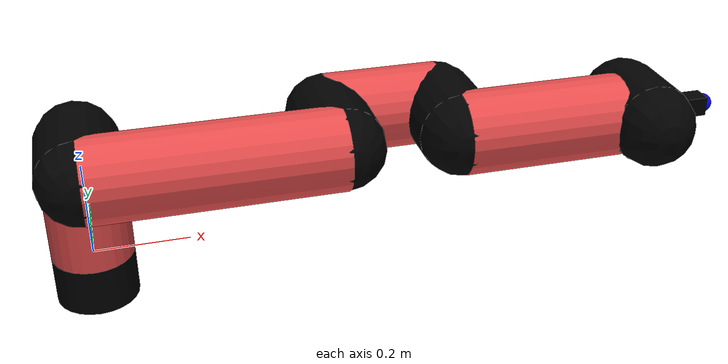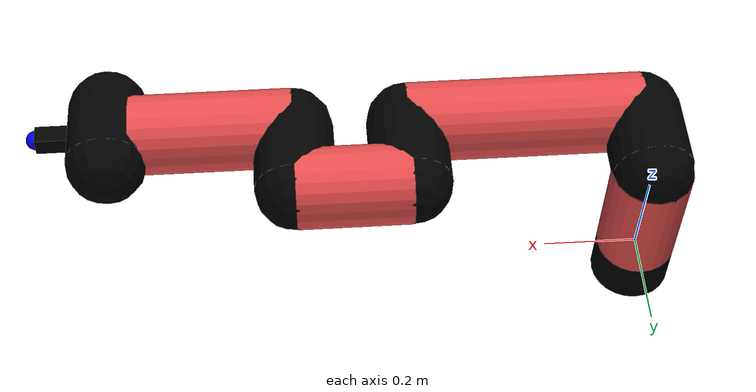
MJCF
<mujoco model="manipulator">
		<compiler angle="degree" coordinate="local" inertiafromgeom="auto" meshdir="meshes/"/>
		<option gravity="0 0 0" integrator="RK4" iterations="30" timestep="0.01"/>

		<default>
		<joint armature="1" limited="true" stiffness="10" damping="15" frictionloss="5.0"/>
		<geom conaffinity="1" condim="3" contype="1" friction=".5 .1 .1" margin="0.002"/>
		<motor ctrllimited="true"/>
		<position ctrllimited="true"/>
		</default>

		<asset>
		<texture builtin="gradient" height="100" rgb1="1.0 1.0 1.0" rgb2="1.0 1.0 1.0" type="skybox" width="100"/>
		<texture builtin="flat" height="32" name="arm_tex" rgb1="0.9 0.3 0.3" type="2d" width="32"/>
		<texture builtin="flat" height="32" name="gripper_tex" rgb1="0.0 0.0 0.0" type="cube" width="32"/>

		<material name="arm_mat" shininess="0.1" specular="0.1" texture="arm_tex"/>
		<material name="gripper_mat" shininess="1" specular="1" texture="gripper_tex"/>
		</asset>

		<worldbody>
		<light cutoff="45" diffuse=".8 .8 .8" dir="0 0.16 -1" directional="false" name="light" pos="0 -2.0 8.0" specular="0.3 0.3 0.3"/>

		<body name="base_link" pos="0 0 -0.1">
		<geom fromto="0 0 0 0 0 0.1" material="arm_mat" name="base_link" rgba="0.0 0.0 0.0 1" size="0.085" type="cylinder"/>
		</body>

		<body name="l1" pos="0 0 0">
<geom fromto="0 0 0 0 0 0.25" material="arm_mat" name="l1" rgba="0.9 0.3 0.3 1" size="0.085" type="cylinder"/>
<geom fromto="0 0 0.25 0 -0.16 0.25" material="arm_mat" name="l1_ex" rgba="0.0 0.0 0.0 1" size="0.085" type="capsule"/>
<joint axis="0 0 1" name="j1" pos="0 0 0" range="-90 90" damping="35.21" frictionloss="11.32"/>

<body name="l2" pos="0 -0.16 0.25">
<geom fromto="0 0 0 0.5 0 0" material="arm_mat" name="l2" rgba="0.9 0.3 0.3 1" size="0.085" type="cylinder"/>
<geom fromto="0.5 0 0 0.5 0.16 0" material="arm_mat" name="l2_ex" rgba="0.0 0.0 0.0 1" size="0.085" type="capsule"/>
<joint axis="-0.1 0.82 -0.2" name="j2" pos="0 0 0" range="-90 60" damping="29.24" frictionloss="10.76"/>

<body name="l3" pos="0.5 0.16 0">
<geom fromto="0 0 0 0.24 0 0" material="arm_mat" name="l3" rgba="0.9 0.3 0.3 1" size="0.085" type="cylinder"/>
<geom fromto="0.24 0 0 0.24 -0.16 0" material="arm_mat" name="l3_ex" rgba="0.0 0.0 0.0 1" size="0.085" type="capsule"/>
<joint axis="-0.16 0.92 -0.05" name="j3" pos="0 0 0" range="-30 60" damping="22.93" frictionloss="11.68"/>

<body name="l4" pos="0.24 -0.16 0">
<geom fromto="0 0 0 0.34 0 0" material="arm_mat" name="l4" rgba="0.9 0.3 0.3 1" size="0.085" type="cylinder"/>
<joint axis="0.02 0.96 0.09" name="j4" pos="0 0 0" range="-30 60" damping="22.53" frictionloss="9.73"/>

<body name="gripper" pos="0.34 0 0">
<geom fromto="0.05 -0.07 0 0.05 0.07 0" material="gripper_mat" name="gripper" rgba="0.0 0.0 0.0 1" size="0.085" type="capsule"/><joint axis="1 0 0" name="j5" pos="0 0 0" range="-90 90" damping="15" frictionloss="5.0"/><body name="finger" pos="0.1 0 0">
<geom fromto="0 0.0 0 0.1 0.0 0" material="gripper_mat" name="finger" rgba="0.0 0.0 0.0 1" size="0.020 0.06 0.06" type="box"/>
</body>
<site name="current" pos="0.2 0. 0.0" rgba="0. 0. 1.0 1" size="0.02" type="sphere"/>
</body>
</body>
</body>
</body>
</body>
</worldbody>
<actuator>
<motor ctrllimited="true" ctrlrange="-1.0 1.0" joint="j1" gear="70.2"/>
<motor ctrllimited="true" ctrlrange="-1.0 1.0" joint="j2" gear="91.55"/>
<motor ctrllimited="true" ctrlrange="-1.0 1.0" joint="j3" gear="77.31"/>
<motor ctrllimited="true" ctrlrange="-1.0 1.0" joint="j4" gear="88.86"/>
<motor ctrllimited="true" ctrlrange="-1.0 1.0" joint="j5" gear="80"/>
</actuator>
</mujoco>
